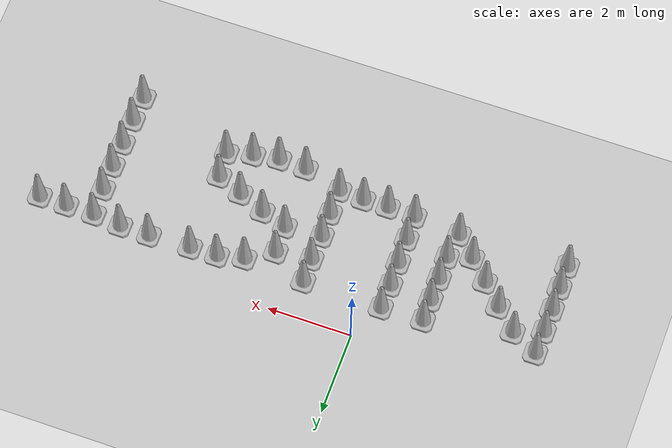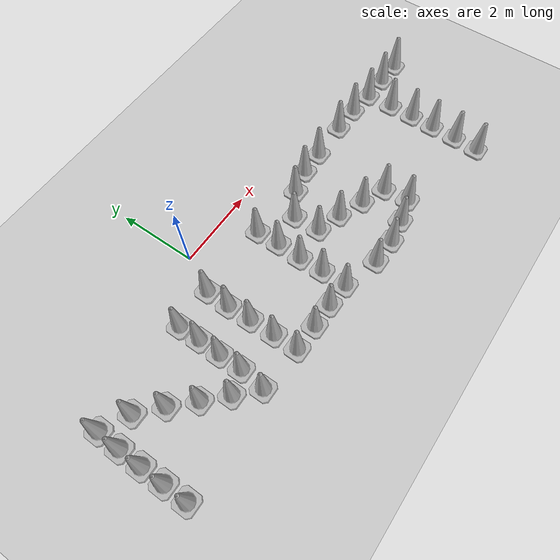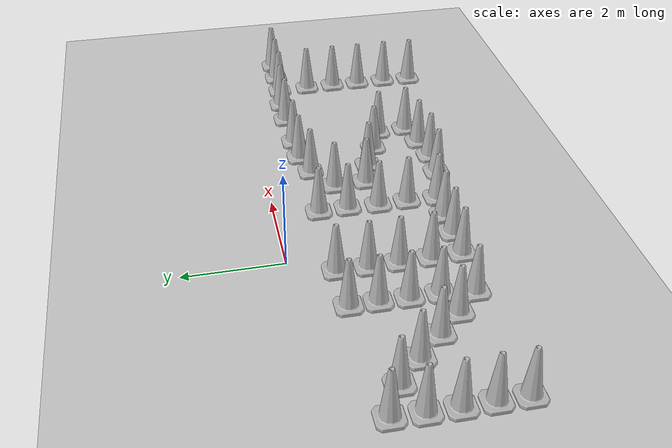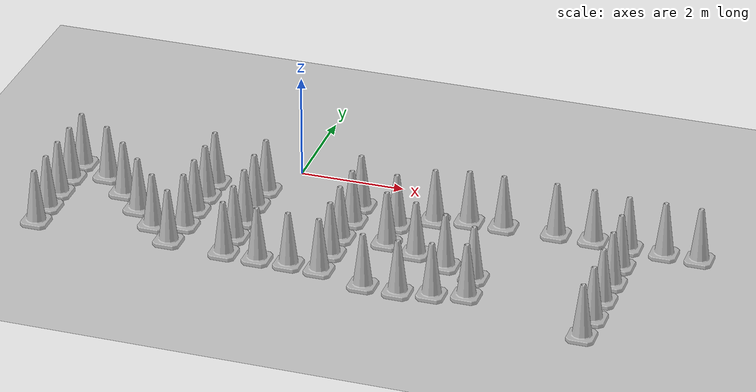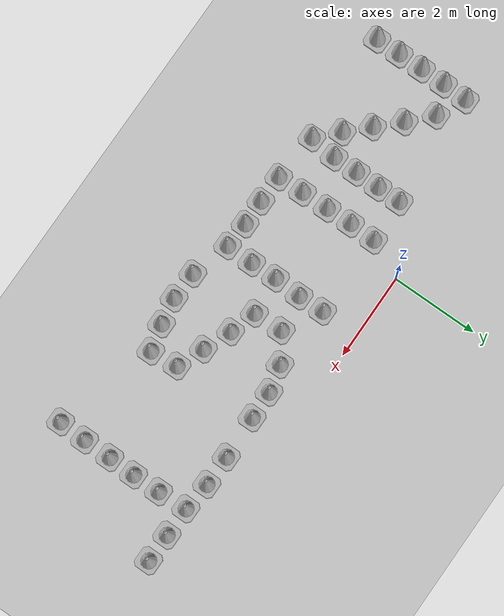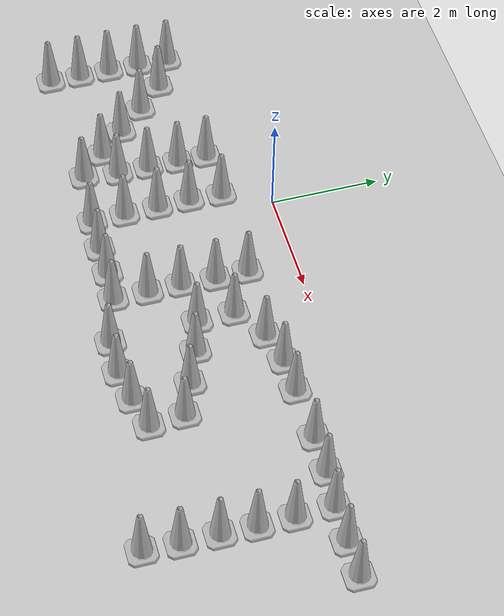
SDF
<sdf version="1.7">
 <world name="default">
  <light name="sun" type="directional">
   <pose>0 0 10 0 -0 0</pose>
   <diffuse>0.8 0.8 0.8 1</diffuse>
   <specular>0.2 0.2 0.2 1</specular>
   <attenuation>
    <range>1000</range>
    <constant>0.9</constant>
    <linear>0.01</linear>
    <quadratic>0.001</quadratic>
   </attenuation>
   <direction>-0.5 0.1 -0.9</direction>
   <spot><inner_angle>0</inner_angle><outer_angle>0</outer_angle><falloff>0</falloff></spot>
  </light>
  <model name="ground_plane">
   <static>1</static>
   <link name="link">
    <collision name="collision">
     <geometry><plane><normal>0 0 1</normal><size>100 100</size></plane></geometry>
     <surface><friction><ode><mu>100</mu><mu2>50</mu2></ode></friction></surface>
    </collision>
    <visual name="visual">
     <cast_shadows>0</cast_shadows>
     <geometry><plane><normal>0 0 1</normal><size>100 100</size></plane></geometry>
     <material>
      <script><uri>file://media/materials/scripts/gazebo.material</uri><name>Gazebo/Grey</name></script>
     </material>
    </visual>
   </link>
  </model>
  <gravity>0 0 -9.8</gravity>
  <magnetic_field>6e-06 2.3e-05 -4.2e-05</magnetic_field>
  <atmosphere type="adiabatic"/>
  <physics type="ode">
   <max_step_size>0.001</max_step_size>
   <real_time_factor>1</real_time_factor>
   <real_time_update_rate>1000</real_time_update_rate>
  </physics>
  <scene><ambient>0.4 0.4 0.4 1</ambient><background>0.7 0.7 0.7 1</background><shadows>1</shadows></scene>
  <spherical_coordinates>
   <surface_model>EARTH_WGS84</surface_model>
   <latitude_deg>0</latitude_deg>
   <longitude_deg>0</longitude_deg>
   <elevation>0</elevation>
   <heading_deg>0</heading_deg>
  </spherical_coordinates>
  <model name="Construction Cone_clone_8">
   <link name="link">
    <collision name="collision">
     <geometry>
      <mesh><scale>10 10 10</scale><uri>model://construction_cone/meshes/construction_cone.dae</uri></mesh>
     </geometry>
    </collision>
    <visual name="visual">
     <geometry>
      <mesh><scale>10 10 10</scale><uri>model://construction_cone/meshes/construction_cone.dae</uri></mesh>
     </geometry>
    </visual>
    <inertial>
     <inertia><ixx>1</ixx><ixy>0</ixy><ixz>0</ixz><iyy>1</iyy><iyz>0</iyz><izz>1</izz></inertia>
     <mass>1</mass>
    </inertial>
   </link>
   <pose>-4.04782 -0.976067 -0 0 -0 0</pose>
  </model>
  <model name="Construction Cone_clone_9">
   <link name="link">
    <collision name="collision">
     <geometry>
      <mesh><scale>10 10 10</scale><uri>model://construction_cone/meshes/construction_cone.dae</uri></mesh>
     </geometry>
    </collision>
    <visual name="visual">
     <geometry>
      <mesh><scale>10 10 10</scale><uri>model://construction_cone/meshes/construction_cone.dae</uri></mesh>
     </geometry>
    </visual>
    <inertial>
     <inertia><ixx>1</ixx><ixy>0</ixy><ixz>0</ixz><iyy>1</iyy><iyz>0</iyz><izz>1</izz></inertia>
     <mass>1</mass>
    </inertial>
   </link>
   <pose>-4.06388 -1.55397 -0 0 -0 0</pose>
  </model>
  <model name="Construction Cone_clone_10">
   <link name="link">
    <collision name="collision">
     <geometry>
      <mesh><scale>10 10 10</scale><uri>model://construction_cone/meshes/construction_cone.dae</uri></mesh>
     </geometry>
    </collision>
    <visual name="visual">
     <geometry>
      <mesh><scale>10 10 10</scale><uri>model://construction_cone/meshes/construction_cone.dae</uri></mesh>
     </geometry>
    </visual>
    <inertial>
     <inertia><ixx>1</ixx><ixy>0</ixy><ixz>0</ixz><iyy>1</iyy><iyz>0</iyz><izz>1</izz></inertia>
     <mass>1</mass>
    </inertial>
   </link>
   <pose>-4.06959 -2.13155 -0 0 -0 0</pose>
  </model>
  <model name="Construction Cone_clone_11">
   <link name="link">
    <collision name="collision">
     <geometry>
      <mesh><scale>10 10 10</scale><uri>model://construction_cone/meshes/construction_cone.dae</uri></mesh>
     </geometry>
    </collision>
    <visual name="visual">
     <geometry>
      <mesh><scale>10 10 10</scale><uri>model://construction_cone/meshes/construction_cone.dae</uri></mesh>
     </geometry>
    </visual>
    <inertial>
     <inertia><ixx>1</ixx><ixy>0</ixy><ixz>0</ixz><iyy>1</iyy><iyz>0</iyz><izz>1</izz></inertia>
     <mass>1</mass>
    </inertial>
   </link>
   <pose>-4.06503 -2.7088 -0 0 -0 0</pose>
  </model>
  <model name="Construction Cone_clone_12">
   <link name="link">
    <collision name="collision">
     <geometry>
      <mesh><scale>10 10 10</scale><uri>model://construction_cone/meshes/construction_cone.dae</uri></mesh>
     </geometry>
    </collision>
    <visual name="visual">
     <geometry>
      <mesh><scale>10 10 10</scale><uri>model://construction_cone/meshes/construction_cone.dae</uri></mesh>
     </geometry>
    </visual>
    <inertial>
     <inertia><ixx>1</ixx><ixy>0</ixy><ixz>0</ixz><iyy>1</iyy><iyz>0</iyz><izz>1</izz></inertia>
     <mass>1</mass>
    </inertial>
   </link>
   <pose>-4.06052 -3.28604 0 -0 -0 -0</pose>
  </model>
  <model name="Construction Cone_clone_13">
   <link name="link">
    <collision name="collision">
     <geometry>
      <mesh><scale>10 10 10</scale><uri>model://construction_cone/meshes/construction_cone.dae</uri></mesh>
     </geometry>
    </collision>
    <visual name="visual">
     <geometry>
      <mesh><scale>10 10 10</scale><uri>model://construction_cone/meshes/construction_cone.dae</uri></mesh>
     </geometry>
    </visual>
    <inertial>
     <inertia><ixx>1</ixx><ixy>0</ixy><ixz>0</ixz><iyy>1</iyy><iyz>0</iyz><izz>1</izz></inertia>
     <mass>1</mass>
    </inertial>
   </link>
   <pose>-3.41039 -1.3002 -0 0 -1e-06 0</pose>
  </model>
  <model name="Construction Cone_clone_14">
   <link name="link">
    <collision name="collision">
     <geometry>
      <mesh><scale>10 10 10</scale><uri>model://construction_cone/meshes/construction_cone.dae</uri></mesh>
     </geometry>
    </collision>
    <visual name="visual">
     <geometry>
      <mesh><scale>10 10 10</scale><uri>model://construction_cone/meshes/construction_cone.dae</uri></mesh>
     </geometry>
    </visual>
    <inertial>
     <inertia><ixx>1</ixx><ixy>0</ixy><ixz>0</ixz><iyy>1</iyy><iyz>0</iyz><izz>1</izz></inertia>
     <mass>1</mass>
    </inertial>
   </link>
   <pose>-2.903 -1.78227 -0 0 -0 0</pose>
  </model>
  <model name="Construction Cone_clone_15">
   <link name="link">
    <collision name="collision">
     <geometry>
      <mesh><scale>10 10 10</scale><uri>model://construction_cone/meshes/construction_cone.dae</uri></mesh>
     </geometry>
    </collision>
    <visual name="visual">
     <geometry>
      <mesh><scale>10 10 10</scale><uri>model://construction_cone/meshes/construction_cone.dae</uri></mesh>
     </geometry>
    </visual>
    <inertial>
     <inertia><ixx>1</ixx><ixy>0</ixy><ixz>0</ixz><iyy>1</iyy><iyz>0</iyz><izz>1</izz></inertia>
     <mass>1</mass>
    </inertial>
   </link>
   <pose>-2.42631 -2.27539 -1e-05 -0 -0 -0</pose>
  </model>
  <model name="Construction Cone_clone_16">
   <link name="link">
    <collision name="collision">
     <geometry>
      <mesh><scale>10 10 10</scale><uri>model://construction_cone/meshes/construction_cone.dae</uri></mesh>
     </geometry>
    </collision>
    <visual name="visual">
     <geometry>
      <mesh><scale>10 10 10</scale><uri>model://construction_cone/meshes/construction_cone.dae</uri></mesh>
     </geometry>
    </visual>
    <inertial>
     <inertia><ixx>1</ixx><ixy>0</ixy><ixz>0</ixz><iyy>1</iyy><iyz>0</iyz><izz>1</izz></inertia>
     <mass>1</mass>
    </inertial>
   </link>
   <pose>-1.9605 -2.74812 -0 0 -0 0</pose>
  </model>
  <model name="Construction Cone_clone_17">
   <link name="link">
    <collision name="collision">
     <geometry>
      <mesh><scale>10 10 10</scale><uri>model://construction_cone/meshes/construction_cone.dae</uri></mesh>
     </geometry>
    </collision>
    <visual name="visual">
     <geometry>
      <mesh><scale>10 10 10</scale><uri>model://construction_cone/meshes/construction_cone.dae</uri></mesh>
     </geometry>
    </visual>
    <inertial>
     <inertia><ixx>1</ixx><ixy>0</ixy><ixz>0</ixz><iyy>1</iyy><iyz>0</iyz><izz>1</izz></inertia>
     <mass>1</mass>
    </inertial>
   </link>
   <pose>-1.48471 -3.21029 -0 0 -0 0</pose>
  </model>
  <model name="Construction Cone_clone_18">
   <link name="link">
    <collision name="collision">
     <geometry>
      <mesh><scale>10 10 10</scale><uri>model://construction_cone/meshes/construction_cone.dae</uri></mesh>
     </geometry>
    </collision>
    <visual name="visual">
     <geometry>
      <mesh><scale>10 10 10</scale><uri>model://construction_cone/meshes/construction_cone.dae</uri></mesh>
     </geometry>
    </visual>
    <inertial>
     <inertia><ixx>1</ixx><ixy>0</ixy><ixz>0</ixz><iyy>1</iyy><iyz>0</iyz><izz>1</izz></inertia>
     <mass>1</mass>
    </inertial>
   </link>
   <pose>-1.40801 -2.57946 -0 0 -1e-06 0</pose>
  </model>
  <model name="Construction Cone_clone_19">
   <link name="link">
    <collision name="collision">
     <geometry>
      <mesh><scale>10 10 10</scale><uri>model://construction_cone/meshes/construction_cone.dae</uri></mesh>
     </geometry>
    </collision>
    <visual name="visual">
     <geometry>
      <mesh><scale>10 10 10</scale><uri>model://construction_cone/meshes/construction_cone.dae</uri></mesh>
     </geometry>
    </visual>
    <inertial>
     <inertia><ixx>1</ixx><ixy>0</ixy><ixz>0</ixz><iyy>1</iyy><iyz>0</iyz><izz>1</izz></inertia>
     <mass>1</mass>
    </inertial>
   </link>
   <pose>-1.41244 -2.00218 -0 0 -1e-06 0</pose>
  </model>
  <model name="Construction Cone_clone_20">
   <link name="link">
    <collision name="collision">
     <geometry>
      <mesh><scale>10 10 10</scale><uri>model://construction_cone/meshes/construction_cone.dae</uri></mesh>
     </geometry>
    </collision>
    <visual name="visual">
     <geometry>
      <mesh><scale>10 10 10</scale><uri>model://construction_cone/meshes/construction_cone.dae</uri></mesh>
     </geometry>
    </visual>
    <inertial>
     <inertia><ixx>1</ixx><ixy>0</ixy><ixz>0</ixz><iyy>1</iyy><iyz>0</iyz><izz>1</izz></inertia>
     <mass>1</mass>
    </inertial>
   </link>
   <pose>-1.40631 -1.43491 -0 0 -0 0</pose>
  </model>
  <model name="Construction Cone_clone_21">
   <link name="link">
    <collision name="collision">
     <geometry>
      <mesh><scale>10 10 10</scale><uri>model://construction_cone/meshes/construction_cone.dae</uri></mesh>
     </geometry>
    </collision>
    <visual name="visual">
     <geometry>
      <mesh><scale>10 10 10</scale><uri>model://construction_cone/meshes/construction_cone.dae</uri></mesh>
     </geometry>
    </visual>
    <inertial>
     <inertia><ixx>1</ixx><ixy>0</ixy><ixz>0</ixz><iyy>1</iyy><iyz>0</iyz><izz>1</izz></inertia>
     <mass>1</mass>
    </inertial>
   </link>
   <pose>-1.40994 -0.888433 -1e-05 0 -0 0</pose>
  </model>
  <model name="Construction Cone_clone_21_clone">
   <link name="link">
    <collision name="collision">
     <geometry>
      <mesh><scale>10 10 10</scale><uri>model://construction_cone/meshes/construction_cone.dae</uri></mesh>
     </geometry>
    </collision>
    <visual name="visual">
     <geometry>
      <mesh><scale>10 10 10</scale><uri>model://construction_cone/meshes/construction_cone.dae</uri></mesh>
     </geometry>
    </visual>
    <inertial>
     <inertia><ixx>1</ixx><ixy>0</ixy><ixz>0</ixz><iyy>1</iyy><iyz>0</iyz><izz>1</izz></inertia>
     <mass>1</mass>
    </inertial>
   </link>
   <pose>-0.410039 -0.864015 -0 0 -0 0</pose>
  </model>
  <model name="Construction Cone_clone_21_clone_0">
   <link name="link">
    <collision name="collision">
     <geometry>
      <mesh><scale>10 10 10</scale><uri>model://construction_cone/meshes/construction_cone.dae</uri></mesh>
     </geometry>
    </collision>
    <visual name="visual">
     <geometry>
      <mesh><scale>10 10 10</scale><uri>model://construction_cone/meshes/construction_cone.dae</uri></mesh>
     </geometry>
    </visual>
    <inertial>
     <inertia><ixx>1</ixx><ixy>0</ixy><ixz>0</ixz><iyy>1</iyy><iyz>0</iyz><izz>1</izz></inertia>
     <mass>1</mass>
    </inertial>
   </link>
   <pose>-0.425461 -1.47284 -0 -0 -0 -0</pose>
  </model>
  <model name="Construction Cone_clone_21_clone_1">
   <link name="link">
    <collision name="collision">
     <geometry>
      <mesh><scale>10 10 10</scale><uri>model://construction_cone/meshes/construction_cone.dae</uri></mesh>
     </geometry>
    </collision>
    <visual name="visual">
     <geometry>
      <mesh><scale>10 10 10</scale><uri>model://construction_cone/meshes/construction_cone.dae</uri></mesh>
     </geometry>
    </visual>
    <inertial>
     <inertia><ixx>1</ixx><ixy>0</ixy><ixz>0</ixz><iyy>1</iyy><iyz>0</iyz><izz>1</izz></inertia>
     <mass>1</mass>
    </inertial>
   </link>
   <pose>-0.41022 -2.0705 -0 1e-06 -0 0</pose>
  </model>
  <model name="Construction Cone_clone_21_clone_2">
   <link name="link">
    <collision name="collision">
     <geometry>
      <mesh><scale>10 10 10</scale><uri>model://construction_cone/meshes/construction_cone.dae</uri></mesh>
     </geometry>
    </collision>
    <visual name="visual">
     <geometry>
      <mesh><scale>10 10 10</scale><uri>model://construction_cone/meshes/construction_cone.dae</uri></mesh>
     </geometry>
    </visual>
    <inertial>
     <inertia><ixx>1</ixx><ixy>0</ixy><ixz>0</ixz><iyy>1</iyy><iyz>0</iyz><izz>1</izz></inertia>
     <mass>1</mass>
    </inertial>
   </link>
   <pose>-0.394201 -2.69901 0 -0 -0 -0</pose>
  </model>
  <model name="Construction Cone_clone_21_clone_3">
   <link name="link">
    <collision name="collision">
     <geometry>
      <mesh><scale>10 10 10</scale><uri>model://construction_cone/meshes/construction_cone.dae</uri></mesh>
     </geometry>
    </collision>
    <visual name="visual">
     <geometry>
      <mesh><scale>10 10 10</scale><uri>model://construction_cone/meshes/construction_cone.dae</uri></mesh>
     </geometry>
    </visual>
    <inertial>
     <inertia><ixx>1</ixx><ixy>0</ixy><ixz>0</ixz><iyy>1</iyy><iyz>0</iyz><izz>1</izz></inertia>
     <mass>1</mass>
    </inertial>
   </link>
   <pose>-0.378708 -3.30685 0 -0 -0 -0</pose>
  </model>
  <model name="Construction Cone_clone_21_clone_4">
   <link name="link">
    <collision name="collision">
     <geometry>
      <mesh><scale>10 10 10</scale><uri>model://construction_cone/meshes/construction_cone.dae</uri></mesh>
     </geometry>
    </collision>
    <visual name="visual">
     <geometry>
      <mesh><scale>10 10 10</scale><uri>model://construction_cone/meshes/construction_cone.dae</uri></mesh>
     </geometry>
    </visual>
    <inertial>
     <inertia><ixx>1</ixx><ixy>0</ixy><ixz>0</ixz><iyy>1</iyy><iyz>0</iyz><izz>1</izz></inertia>
     <mass>1</mass>
    </inertial>
   </link>
   <pose>0.271233 -3.32128 -0 0 -0 0</pose>
  </model>
  <model name="Construction Cone_clone_21_clone_5">
   <link name="link">
    <collision name="collision">
     <geometry>
      <mesh><scale>10 10 10</scale><uri>model://construction_cone/meshes/construction_cone.dae</uri></mesh>
     </geometry>
    </collision>
    <visual name="visual">
     <geometry>
      <mesh><scale>10 10 10</scale><uri>model://construction_cone/meshes/construction_cone.dae</uri></mesh>
     </geometry>
    </visual>
    <inertial>
     <inertia><ixx>1</ixx><ixy>0</ixy><ixz>0</ixz><iyy>1</iyy><iyz>0</iyz><izz>1</izz></inertia>
     <mass>1</mass>
    </inertial>
   </link>
   <pose>0.869132 -3.31639 -0 0 -0 0</pose>
  </model>
  <model name="Construction Cone_clone_21_clone_6">
   <link name="link">
    <collision name="collision">
     <geometry>
      <mesh><scale>10 10 10</scale><uri>model://construction_cone/meshes/construction_cone.dae</uri></mesh>
     </geometry>
    </collision>
    <visual name="visual">
     <geometry>
      <mesh><scale>10 10 10</scale><uri>model://construction_cone/meshes/construction_cone.dae</uri></mesh>
     </geometry>
    </visual>
    <inertial>
     <inertia><ixx>1</ixx><ixy>0</ixy><ixz>0</ixz><iyy>1</iyy><iyz>0</iyz><izz>1</izz></inertia>
     <mass>1</mass>
    </inertial>
   </link>
   <pose>1.46807 -3.35272 -0 1e-06 -0 0</pose>
  </model>
  <model name="Construction Cone_clone_21_clone_7">
   <link name="link">
    <collision name="collision">
     <geometry>
      <mesh><scale>10 10 10</scale><uri>model://construction_cone/meshes/construction_cone.dae</uri></mesh>
     </geometry>
    </collision>
    <visual name="visual">
     <geometry>
      <mesh><scale>10 10 10</scale><uri>model://construction_cone/meshes/construction_cone.dae</uri></mesh>
     </geometry>
    </visual>
    <inertial>
     <inertia><ixx>1</ixx><ixy>0</ixy><ixz>0</ixz><iyy>1</iyy><iyz>0</iyz><izz>1</izz></inertia>
     <mass>1</mass>
    </inertial>
   </link>
   <pose>1.47276 -2.72376 -8e-06 0 1e-06 0</pose>
  </model>
  <model name="Construction Cone_clone_21_clone_8">
   <link name="link">
    <collision name="collision">
     <geometry>
      <mesh><scale>10 10 10</scale><uri>model://construction_cone/meshes/construction_cone.dae</uri></mesh>
     </geometry>
    </collision>
    <visual name="visual">
     <geometry>
      <mesh><scale>10 10 10</scale><uri>model://construction_cone/meshes/construction_cone.dae</uri></mesh>
     </geometry>
    </visual>
    <inertial>
     <inertia><ixx>1</ixx><ixy>0</ixy><ixz>0</ixz><iyy>1</iyy><iyz>0</iyz><izz>1</izz></inertia>
     <mass>1</mass>
    </inertial>
   </link>
   <pose>1.45737 -2.11586 -0 0 -0 0</pose>
  </model>
  <model name="Construction Cone_clone_21_clone_9">
   <link name="link">
    <collision name="collision">
     <geometry>
      <mesh><scale>10 10 10</scale><uri>model://construction_cone/meshes/construction_cone.dae</uri></mesh>
     </geometry>
    </collision>
    <visual name="visual">
     <geometry>
      <mesh><scale>10 10 10</scale><uri>model://construction_cone/meshes/construction_cone.dae</uri></mesh>
     </geometry>
    </visual>
    <inertial>
     <inertia><ixx>1</ixx><ixy>0</ixy><ixz>0</ixz><iyy>1</iyy><iyz>0</iyz><izz>1</izz></inertia>
     <mass>1</mass>
    </inertial>
   </link>
   <pose>1.48266 -1.48623 0 -0 -0 -0</pose>
  </model>
  <model name="Construction Cone_clone_21_clone_10">
   <link name="link">
    <collision name="collision">
     <geometry>
      <mesh><scale>10 10 10</scale><uri>model://construction_cone/meshes/construction_cone.dae</uri></mesh>
     </geometry>
    </collision>
    <visual name="visual">
     <geometry>
      <mesh><scale>10 10 10</scale><uri>model://construction_cone/meshes/construction_cone.dae</uri></mesh>
     </geometry>
    </visual>
    <inertial>
     <inertia><ixx>1</ixx><ixy>0</ixy><ixz>0</ixz><iyy>1</iyy><iyz>0</iyz><izz>1</izz></inertia>
     <mass>1</mass>
    </inertial>
   </link>
   <pose>1.46752 -0.888506 -0 0 -0 0</pose>
  </model>
  <model name="Construction Cone_clone_21_clone_11">
   <link name="link">
    <collision name="collision">
     <geometry>
      <mesh><scale>10 10 10</scale><uri>model://construction_cone/meshes/construction_cone.dae</uri></mesh>
     </geometry>
    </collision>
    <visual name="visual">
     <geometry>
      <mesh><scale>10 10 10</scale><uri>model://construction_cone/meshes/construction_cone.dae</uri></mesh>
     </geometry>
    </visual>
    <inertial>
     <inertia><ixx>1</ixx><ixy>0</ixy><ixz>0</ixz><iyy>1</iyy><iyz>0</iyz><izz>1</izz></inertia>
     <mass>1</mass>
    </inertial>
   </link>
   <pose>4.18835 -0.819403 -0 0 -0 0</pose>
  </model>
  <model name="Construction Cone_clone_21_clone_12">
   <link name="link">
    <collision name="collision">
     <geometry>
      <mesh><scale>10 10 10</scale><uri>model://construction_cone/meshes/construction_cone.dae</uri></mesh>
     </geometry>
    </collision>
    <visual name="visual">
     <geometry>
      <mesh><scale>10 10 10</scale><uri>model://construction_cone/meshes/construction_cone.dae</uri></mesh>
     </geometry>
    </visual>
    <inertial>
     <inertia><ixx>1</ixx><ixy>0</ixy><ixz>0</ixz><iyy>1</iyy><iyz>0</iyz><izz>1</izz></inertia>
     <mass>1</mass>
    </inertial>
   </link>
   <pose>3.53906 -0.835884 -0 0 -0 0</pose>
  </model>
  <model name="Construction Cone_clone_21_clone_16">
   <link name="link">
    <collision name="collision">
     <geometry>
      <mesh><scale>10 10 10</scale><uri>model://construction_cone/meshes/construction_cone.dae</uri></mesh>
     </geometry>
    </collision>
    <visual name="visual">
     <geometry>
      <mesh><scale>10 10 10</scale><uri>model://construction_cone/meshes/construction_cone.dae</uri></mesh>
     </geometry>
    </visual>
    <inertial>
     <inertia><ixx>1</ixx><ixy>0</ixy><ixz>0</ixz><iyy>1</iyy><iyz>0</iyz><izz>1</izz></inertia>
     <mass>1</mass>
    </inertial>
   </link>
   <pose>2.33225 -2.05239 -0 0 -1e-06 0</pose>
  </model>
  <model name="Construction Cone_clone_21_clone_17">
   <link name="link">
    <collision name="collision">
     <geometry>
      <mesh><scale>10 10 10</scale><uri>model://construction_cone/meshes/construction_cone.dae</uri></mesh>
     </geometry>
    </collision>
    <visual name="visual">
     <geometry>
      <mesh><scale>10 10 10</scale><uri>model://construction_cone/meshes/construction_cone.dae</uri></mesh>
     </geometry>
    </visual>
    <inertial>
     <inertia><ixx>1</ixx><ixy>0</ixy><ixz>0</ixz><iyy>1</iyy><iyz>0</iyz><izz>1</izz></inertia>
     <mass>1</mass>
    </inertial>
   </link>
   <pose>2.94546 -2.24303 -0 0 -1e-06 0</pose>
  </model>
  <model name="Construction Cone_clone_21_clone_18">
   <link name="link">
    <collision name="collision">
     <geometry>
      <mesh><scale>10 10 10</scale><uri>model://construction_cone/meshes/construction_cone.dae</uri></mesh>
     </geometry>
    </collision>
    <visual name="visual">
     <geometry>
      <mesh><scale>10 10 10</scale><uri>model://construction_cone/meshes/construction_cone.dae</uri></mesh>
     </geometry>
    </visual>
    <inertial>
     <inertia><ixx>1</ixx><ixy>0</ixy><ixz>0</ixz><iyy>1</iyy><iyz>0</iyz><izz>1</izz></inertia>
     <mass>1</mass>
    </inertial>
   </link>
   <pose>3.58107 -2.50526 -0 0 -0 0</pose>
  </model>
  <model name="Construction Cone_clone_21_clone_19">
   <link name="link">
    <collision name="collision">
     <geometry>
      <mesh><scale>10 10 10</scale><uri>model://construction_cone/meshes/construction_cone.dae</uri></mesh>
     </geometry>
    </collision>
    <visual name="visual">
     <geometry>
      <mesh><scale>10 10 10</scale><uri>model://construction_cone/meshes/construction_cone.dae</uri></mesh>
     </geometry>
    </visual>
    <inertial>
     <inertia><ixx>1</ixx><ixy>0</ixy><ixz>0</ixz><iyy>1</iyy><iyz>0</iyz><izz>1</izz></inertia>
     <mass>1</mass>
    </inertial>
   </link>
   <pose>4.19576 -2.75767 -0 0 -1e-06 0</pose>
  </model>
  <model name="Construction Cone_clone_21_clone_20">
   <link name="link">
    <collision name="collision">
     <geometry>
      <mesh><scale>10 10 10</scale><uri>model://construction_cone/meshes/construction_cone.dae</uri></mesh>
     </geometry>
    </collision>
    <visual name="visual">
     <geometry>
      <mesh><scale>10 10 10</scale><uri>model://construction_cone/meshes/construction_cone.dae</uri></mesh>
     </geometry>
    </visual>
    <inertial>
     <inertia><ixx>1</ixx><ixy>0</ixy><ixz>0</ixz><iyy>1</iyy><iyz>0</iyz><izz>1</izz></inertia>
     <mass>1</mass>
    </inertial>
   </link>
   <pose>4.25303 -3.39538 -0 0 -0 0</pose>
  </model>
  <model name="Construction Cone_clone_21_clone_21">
   <link name="link">
    <collision name="collision">
     <geometry>
      <mesh><scale>10 10 10</scale><uri>model://construction_cone/meshes/construction_cone.dae</uri></mesh>
     </geometry>
    </collision>
    <visual name="visual">
     <geometry>
      <mesh><scale>10 10 10</scale><uri>model://construction_cone/meshes/construction_cone.dae</uri></mesh>
     </geometry>
    </visual>
    <inertial>
     <inertia><ixx>1</ixx><ixy>0</ixy><ixz>0</ixz><iyy>1</iyy><iyz>0</iyz><izz>1</izz></inertia>
     <mass>1</mass>
    </inertial>
   </link>
   <pose>3.64844 -3.54473 0 -0 -0 -0</pose>
  </model>
  <model name="Construction Cone_clone_21_clone_22">
   <link name="link">
    <collision name="collision">
     <geometry>
      <mesh><scale>10 10 10</scale><uri>model://construction_cone/meshes/construction_cone.dae</uri></mesh>
     </geometry>
    </collision>
    <visual name="visual">
     <geometry>
      <mesh><scale>10 10 10</scale><uri>model://construction_cone/meshes/construction_cone.dae</uri></mesh>
     </geometry>
    </visual>
    <inertial>
     <inertia><ixx>1</ixx><ixy>0</ixy><ixz>0</ixz><iyy>1</iyy><iyz>0</iyz><izz>1</izz></inertia>
     <mass>1</mass>
    </inertial>
   </link>
   <pose>3.04258 -3.64258 -1e-05 0 -0 0</pose>
  </model>
  <model name="Construction Cone_clone_21_clone_23">
   <link name="link">
    <collision name="collision">
     <geometry>
      <mesh><scale>10 10 10</scale><uri>model://construction_cone/meshes/construction_cone.dae</uri></mesh>
     </geometry>
    </collision>
    <visual name="visual">
     <geometry>
      <mesh><scale>10 10 10</scale><uri>model://construction_cone/meshes/construction_cone.dae</uri></mesh>
     </geometry>
    </visual>
    <inertial>
     <inertia><ixx>1</ixx><ixy>0</ixy><ixz>0</ixz><iyy>1</iyy><iyz>0</iyz><izz>1</izz></inertia>
     <mass>1</mass>
    </inertial>
   </link>
   <pose>2.38212 -3.61813 -8e-06 1e-06 -0 0</pose>
  </model>
  <model name="Construction Cone_clone_21_clone_13">
   <link name="link">
    <collision name="collision">
     <geometry>
      <mesh><scale>10 10 10</scale><uri>model://construction_cone/meshes/construction_cone.dae</uri></mesh>
     </geometry>
    </collision>
    <visual name="visual">
     <geometry>
      <mesh><scale>10 10 10</scale><uri>model://construction_cone/meshes/construction_cone.dae</uri></mesh>
     </geometry>
    </visual>
    <inertial>
     <inertia><ixx>1</ixx><ixy>0</ixy><ixz>0</ixz><iyy>1</iyy><iyz>0</iyz><izz>1</izz></inertia>
     <mass>1</mass>
    </inertial>
   </link>
   <pose>2.92195 -0.982402 -0 0 -0 0</pose>
  </model>
  <model name="Construction Cone_clone_21_clone_14">
   <link name="link">
    <collision name="collision">
     <geometry>
      <mesh><scale>10 10 10</scale><uri>model://construction_cone/meshes/construction_cone.dae</uri></mesh>
     </geometry>
    </collision>
    <visual name="visual">
     <geometry>
      <mesh><scale>10 10 10</scale><uri>model://construction_cone/meshes/construction_cone.dae</uri></mesh>
     </geometry>
    </visual>
    <inertial>
     <inertia><ixx>1</ixx><ixy>0</ixy><ixz>0</ixz><iyy>1</iyy><iyz>0</iyz><izz>1</izz></inertia>
     <mass>1</mass>
    </inertial>
   </link>
   <pose>2.31035 -1.37581 -0 0 -0 0</pose>
  </model>
  <model name="Construction Cone_clone_21_clone_15">
   <link name="link">
    <collision name="collision">
     <geometry>
      <mesh><scale>10 10 10</scale><uri>model://construction_cone/meshes/construction_cone.dae</uri></mesh>
     </geometry>
    </collision>
    <visual name="visual">
     <geometry>
      <mesh><scale>10 10 10</scale><uri>model://construction_cone/meshes/construction_cone.dae</uri></mesh>
     </geometry>
    </visual>
    <inertial>
     <inertia><ixx>1</ixx><ixy>0</ixy><ixz>0</ixz><iyy>1</iyy><iyz>0</iyz><izz>1</izz></inertia>
     <mass>1</mass>
    </inertial>
   </link>
   <pose>5.18429 -0.790841 -0 0 -1e-06 0</pose>
  </model>
  <model name="Construction Cone_clone_21_clone_24">
   <link name="link">
    <collision name="collision">
     <geometry>
      <mesh><scale>10 10 10</scale><uri>model://construction_cone/meshes/construction_cone.dae</uri></mesh>
     </geometry>
    </collision>
    <visual name="visual">
     <geometry>
      <mesh><scale>10 10 10</scale><uri>model://construction_cone/meshes/construction_cone.dae</uri></mesh>
     </geometry>
    </visual>
    <inertial>
     <inertia><ixx>1</ixx><ixy>0</ixy><ixz>0</ixz><iyy>1</iyy><iyz>0</iyz><izz>1</izz></inertia>
     <mass>1</mass>
    </inertial>
   </link>
   <pose>5.89141 -0.797264 -0 0 -0 0</pose>
  </model>
  <model name="Construction Cone_clone_21_clone_25">
   <link name="link">
    <collision name="collision">
     <geometry>
      <mesh><scale>10 10 10</scale><uri>model://construction_cone/meshes/construction_cone.dae</uri></mesh>
     </geometry>
    </collision>
    <visual name="visual">
     <geometry>
      <mesh><scale>10 10 10</scale><uri>model://construction_cone/meshes/construction_cone.dae</uri></mesh>
     </geometry>
    </visual>
    <inertial>
     <inertia><ixx>1</ixx><ixy>0</ixy><ixz>0</ixz><iyy>1</iyy><iyz>0</iyz><izz>1</izz></inertia>
     <mass>1</mass>
    </inertial>
   </link>
   <pose>6.56353 -0.865523 -0 0 -1e-06 0</pose>
  </model>
  <model name="Construction Cone_clone_21_clone_26">
   <link name="link">
    <collision name="collision">
     <geometry>
      <mesh><scale>10 10 10</scale><uri>model://construction_cone/meshes/construction_cone.dae</uri></mesh>
     </geometry>
    </collision>
    <visual name="visual">
     <geometry>
      <mesh><scale>10 10 10</scale><uri>model://construction_cone/meshes/construction_cone.dae</uri></mesh>
     </geometry>
    </visual>
    <inertial>
     <inertia><ixx>1</ixx><ixy>0</ixy><ixz>0</ixz><iyy>1</iyy><iyz>0</iyz><izz>1</izz></inertia>
     <mass>1</mass>
    </inertial>
   </link>
   <pose>7.24619 -0.872565 -1e-05 -0 -0 -0</pose>
  </model>
  <model name="Construction Cone_clone_21_clone_27">
   <link name="link">
    <collision name="collision">
     <geometry>
      <mesh><scale>10 10 10</scale><uri>model://construction_cone/meshes/construction_cone.dae</uri></mesh>
     </geometry>
    </collision>
    <visual name="visual">
     <geometry>
      <mesh><scale>10 10 10</scale><uri>model://construction_cone/meshes/construction_cone.dae</uri></mesh>
     </geometry>
    </visual>
    <inertial>
     <inertia><ixx>1</ixx><ixy>0</ixy><ixz>0</ixz><iyy>1</iyy><iyz>0</iyz><izz>1</izz></inertia>
     <mass>1</mass>
    </inertial>
   </link>
   <pose>7.90458 -0.880212 -0 0 -0 0</pose>
  </model>
  <model name="Construction Cone_clone_21_clone_28">
   <link name="link">
    <collision name="collision">
     <geometry>
      <mesh><scale>10 10 10</scale><uri>model://construction_cone/meshes/construction_cone.dae</uri></mesh>
     </geometry>
    </collision>
    <visual name="visual">
     <geometry>
      <mesh><scale>10 10 10</scale><uri>model://construction_cone/meshes/construction_cone.dae</uri></mesh>
     </geometry>
    </visual>
    <inertial>
     <inertia><ixx>1</ixx><ixy>0</ixy><ixz>0</ixz><iyy>1</iyy><iyz>0</iyz><izz>1</izz></inertia>
     <mass>1</mass>
    </inertial>
   </link>
   <pose>6.59694 -1.54411 -0 0 -0 0</pose>
  </model>
  <model name="Construction Cone_clone_21_clone_29">
   <link name="link">
    <collision name="collision">
     <geometry>
      <mesh><scale>10 10 10</scale><uri>model://construction_cone/meshes/construction_cone.dae</uri></mesh>
     </geometry>
    </collision>
    <visual name="visual">
     <geometry>
      <mesh><scale>10 10 10</scale><uri>model://construction_cone/meshes/construction_cone.dae</uri></mesh>
     </geometry>
    </visual>
    <inertial>
     <inertia><ixx>1</ixx><ixy>0</ixy><ixz>0</ixz><iyy>1</iyy><iyz>0</iyz><izz>1</izz></inertia>
     <mass>1</mass>
    </inertial>
   </link>
   <pose>6.60909 -2.18219 -0 0 -0 0</pose>
  </model>
  <model name="Construction Cone_clone_21_clone_30">
   <link name="link">
    <collision name="collision">
     <geometry>
      <mesh><scale>10 10 10</scale><uri>model://construction_cone/meshes/construction_cone.dae</uri></mesh>
     </geometry>
    </collision>
    <visual name="visual">
     <geometry>
      <mesh><scale>10 10 10</scale><uri>model://construction_cone/meshes/construction_cone.dae</uri></mesh>
     </geometry>
    </visual>
    <inertial>
     <inertia><ixx>1</ixx><ixy>0</ixy><ixz>0</ixz><iyy>1</iyy><iyz>0</iyz><izz>1</izz></inertia>
     <mass>1</mass>
    </inertial>
   </link>
   <pose>6.59671 -2.804 -0 0 -1e-06 0</pose>
  </model>
  <model name="Construction Cone_clone_21_clone_31">
   <link name="link">
    <collision name="collision">
     <geometry>
      <mesh><scale>10 10 10</scale><uri>model://construction_cone/meshes/construction_cone.dae</uri></mesh>
     </geometry>
    </collision>
    <visual name="visual">
     <geometry>
      <mesh><scale>10 10 10</scale><uri>model://construction_cone/meshes/construction_cone.dae</uri></mesh>
     </geometry>
    </visual>
    <inertial>
     <inertia><ixx>1</ixx><ixy>0</ixy><ixz>0</ixz><iyy>1</iyy><iyz>0</iyz><izz>1</izz></inertia>
     <mass>1</mass>
    </inertial>
   </link>
   <pose>6.59724 -3.45715 -0 0 -0 0</pose>
  </model>
  <model name="Construction Cone_clone_21_clone_32">
   <link name="link">
    <collision name="collision">
     <geometry>
      <mesh><scale>10 10 10</scale><uri>model://construction_cone/meshes/construction_cone.dae</uri></mesh>
     </geometry>
    </collision>
    <visual name="visual">
     <geometry>
      <mesh><scale>10 10 10</scale><uri>model://construction_cone/meshes/construction_cone.dae</uri></mesh>
     </geometry>
    </visual>
    <inertial>
     <inertia><ixx>1</ixx><ixy>0</ixy><ixz>0</ixz><iyy>1</iyy><iyz>0</iyz><izz>1</izz></inertia>
     <mass>1</mass>
    </inertial>
   </link>
   <pose>6.57336 -4.094 -0 0 -1e-06 0</pose>
  </model>
 </world>
</sdf>
